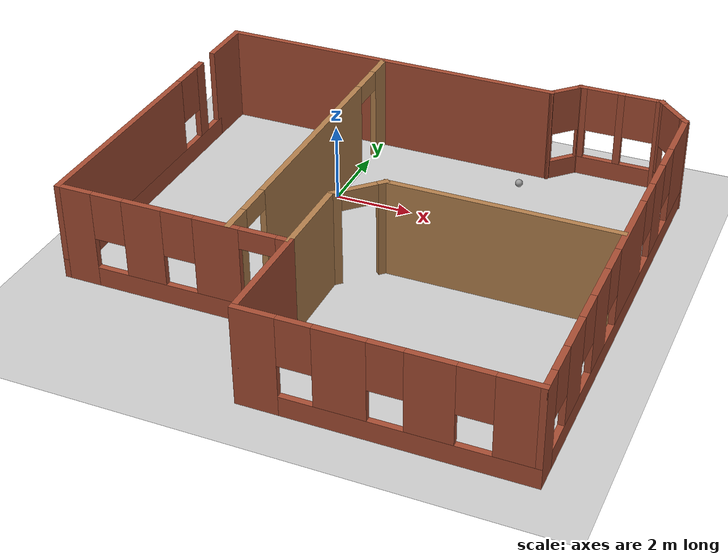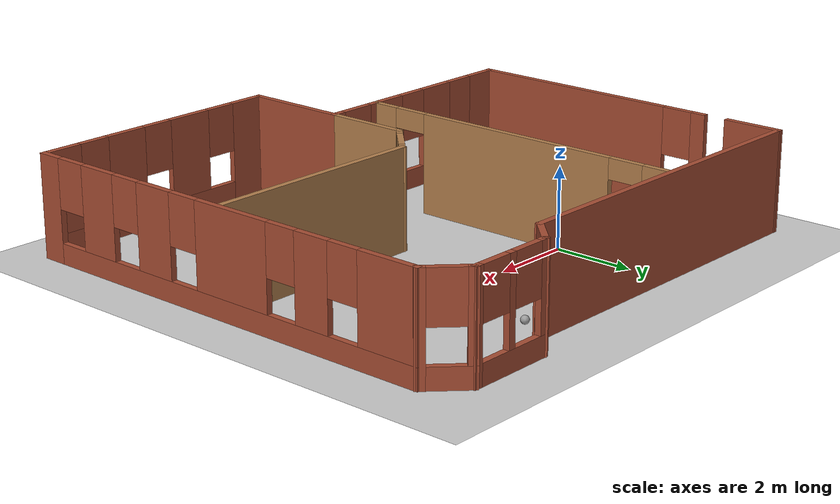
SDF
<sdf version="1.6">
 <world name="default">
  <model name="ground_plane">
   <static>1</static>
   <link name="link">
    <collision name="collision">
     <geometry><plane><normal>0 0 1</normal><size>100 100</size></plane></geometry>
     <surface><friction><ode><mu>100</mu><mu2>50</mu2></ode></friction></surface>
    </collision>
    <visual name="visual">
     <cast_shadows>0</cast_shadows>
     <geometry><plane><normal>0 0 1</normal><size>100 100</size></plane></geometry>
     <material>
      <script><uri>file://media/materials/scripts/gazebo.material</uri><name>Gazebo/Grey</name></script>
     </material>
    </visual>
   </link>
  </model>
  <model name="my_building">
   <pose>1.88159 -2.31707 0 0 -0 0</pose>
   <link name="Wall_1">
    <pose>-6.24044 0.320558 0 0 0 -1.5708</pose>
    <visual name="Wall_1_Visual_0">
     <pose>0 0 0.25 0 -0 0</pose>
     <geometry><box><size>7.5 0.15 0.5</size></box></geometry>
     <material>
      <script><uri>file://media/materials/scripts/gazebo.material</uri><name>Gazebo/Bricks</name></script>
      <ambient>1 1 1 1</ambient>
     </material>
     <meta><layer>0</layer></meta>
    </visual>
    <collision name="Wall_1_Collision_0">
     <geometry><box><size>7.5 0.15 0.5</size></box></geometry>
     <pose>0 0 0.25 0 -0 0</pose>
    </collision>
    <visual name="Wall_1_Visual_1">
     <pose>-2.85238 0 1.5 0 -0 0</pose>
     <geometry><box><size>0.39025 0.15 2</size></box></geometry>
     <material>
      <script><uri>file://media/materials/scripts/gazebo.material</uri><name>Gazebo/Bricks</name></script>
      <ambient>1 1 1 1</ambient>
     </material>
     <meta><layer>0</layer></meta>
    </visual>
    <collision name="Wall_1_Collision_1">
     <geometry><box><size>0.39025 0.15 2</size></box></geometry>
     <pose>-2.85238 0 1.5 0 -0 0</pose>
    </collision>
    <visual name="Wall_1_Visual_2">
     <pose>0.946373 0 1.5 0 -0 0</pose>
     <geometry><box><size>5.60726 0.15 2</size></box></geometry>
     <material>
      <script><uri>file://media/materials/scripts/gazebo.material</uri><name>Gazebo/Bricks</name></script>
      <ambient>1 1 1 1</ambient>
     </material>
     <meta><layer>0</layer></meta>
    </visual>
    <collision name="Wall_1_Collision_2">
     <geometry><box><size>5.60726 0.15 2</size></box></geometry>
     <pose>0.946373 0 1.5 0 -0 0</pose>
    </collision>
    <visual name="Wall_1_Visual_3">
     <pose>-2.25725 0 1.9 0 -0 0</pose>
     <geometry><box><size>0.8 0.15 1.2</size></box></geometry>
     <material>
      <script><uri>file://media/materials/scripts/gazebo.material</uri><name>Gazebo/Bricks</name></script>
      <ambient>1 1 1 1</ambient>
     </material>
     <meta><layer>0</layer></meta>
    </visual>
    <collision name="Wall_1_Collision_3">
     <geometry><box><size>0.8 0.15 1.2</size></box></geometry>
     <pose>-2.25725 0 1.9 0 -0 0</pose>
    </collision>
   </link>
   <link name="Wall_17">
    <collision name="Wall_17_Collision">
     <geometry><box><size>1.5 0.15 2.5</size></box></geometry>
     <pose>0 0 1.25 0 -0 0</pose>
    </collision>
    <visual name="Wall_17_Visual">
     <pose>0 0 1.25 0 -0 0</pose>
     <geometry><box><size>1.5 0.15 2.5</size></box></geometry>
     <material>
      <script><uri>file://media/materials/scripts/gazebo.material</uri><name>Gazebo/Bricks</name></script>
      <ambient>1 1 1 1</ambient>
     </material>
     <meta><layer>0</layer></meta>
    </visual>
    <pose>-6.24044 4.67056 0 0 -0 1.5708</pose>
   </link>
   <link name="Wall_19">
    <collision name="Wall_19_Collision">
     <geometry><box><size>9.12117 0.15 2.5</size></box></geometry>
     <pose>0 0 1.25 0 -0 0</pose>
    </collision>
    <visual name="Wall_19_Visual">
     <pose>0 0 1.25 0 -0 0</pose>
     <geometry><box><size>9.12117 0.15 2.5</size></box></geometry>
     <material>
      <script><uri>file://media/materials/scripts/gazebo.material</uri><name>Gazebo/Bricks</name></script>
      <ambient>1 1 1 1</ambient>
     </material>
     <meta><layer>0</layer></meta>
    </visual>
    <pose>-1.75486 5.33395 0 0 0 -0.002589</pose>
   </link>
   <link name="Wall_2">
    <pose>-3.31544 -3.35444 0 0 -0 0</pose>
    <visual name="Wall_2_Visual_0">
     <pose>-2.5228 0 1.25 0 -0 0</pose>
     <geometry><box><size>0.954403 0.15 2.5</size></box></geometry>
     <material>
      <script><uri>file://media/materials/scripts/gazebo.material</uri><name>Gazebo/Bricks</name></script>
      <ambient>1 1 1 1</ambient>
     </material>
     <meta><layer>0</layer></meta>
    </visual>
    <collision name="Wall_2_Collision_0">
     <geometry><box><size>0.954403 0.15 2.5</size></box></geometry>
     <pose>-2.5228 0 1.25 0 -0 0</pose>
    </collision>
    <visual name="Wall_2_Visual_1">
     <pose>2.80401 0 1.25 0 -0 0</pose>
     <geometry><box><size>0.391972 0.15 2.5</size></box></geometry>
     <material>
      <script><uri>file://media/materials/scripts/gazebo.material</uri><name>Gazebo/Bricks</name></script>
      <ambient>1 1 1 1</ambient>
     </material>
     <meta><layer>0</layer></meta>
    </visual>
    <collision name="Wall_2_Collision_1">
     <geometry><box><size>0.391972 0.15 2.5</size></box></geometry>
     <pose>2.80401 0 1.25 0 -0 0</pose>
    </collision>
    <visual name="Wall_2_Visual_2">
     <pose>-0.168784 0 0.25 0 -0 0</pose>
     <geometry><box><size>3.75362 0.15 0.5</size></box></geometry>
     <material>
      <script><uri>file://media/materials/scripts/gazebo.material</uri><name>Gazebo/Bricks</name></script>
      <ambient>1 1 1 1</ambient>
     </material>
     <meta><layer>0</layer></meta>
    </visual>
    <collision name="Wall_2_Collision_2">
     <geometry><box><size>3.75362 0.15 0.5</size></box></geometry>
     <pose>-0.168784 0 0.25 0 -0 0</pose>
    </collision>
    <visual name="Wall_2_Visual_3">
     <pose>-0.739972 0 1.5 0 -0 0</pose>
     <geometry><box><size>1.01125 0.15 2</size></box></geometry>
     <material>
      <script><uri>file://media/materials/scripts/gazebo.material</uri><name>Gazebo/Bricks</name></script>
      <ambient>1 1 1 1</ambient>
     </material>
     <meta><layer>0</layer></meta>
    </visual>
    <collision name="Wall_2_Collision_3">
     <geometry><box><size>1.01125 0.15 2</size></box></geometry>
     <pose>-0.739972 0 1.5 0 -0 0</pose>
    </collision>
    <visual name="Wall_2_Visual_4">
     <pose>1.13684 0 1.5 0 -0 0</pose>
     <geometry><box><size>1.14237 0.15 2</size></box></geometry>
     <material>
      <script><uri>file://media/materials/scripts/gazebo.material</uri><name>Gazebo/Bricks</name></script>
      <ambient>1 1 1 1</ambient>
     </material>
     <meta><layer>0</layer></meta>
    </visual>
    <collision name="Wall_2_Collision_4">
     <geometry><box><size>1.14237 0.15 2</size></box></geometry>
     <pose>1.13684 0 1.5 0 -0 0</pose>
    </collision>
    <visual name="Wall_2_Visual_5">
     <pose>-1.6456 0 1.9 0 -0 0</pose>
     <geometry><box><size>0.8 0.15 1.2</size></box></geometry>
     <material>
      <script><uri>file://media/materials/scripts/gazebo.material</uri><name>Gazebo/Bricks</name></script>
      <ambient>1 1 1 1</ambient>
     </material>
     <meta><layer>0</layer></meta>
    </visual>
    <collision name="Wall_2_Collision_5">
     <geometry><box><size>0.8 0.15 1.2</size></box></geometry>
     <pose>-1.6456 0 1.9 0 -0 0</pose>
    </collision>
    <visual name="Wall_2_Visual_6">
     <pose>0.165653 0 1.9 0 -0 0</pose>
     <geometry><box><size>0.8 0.15 1.2</size></box></geometry>
     <material>
      <script><uri>file://media/materials/scripts/gazebo.material</uri><name>Gazebo/Bricks</name></script>
      <ambient>1 1 1 1</ambient>
     </material>
     <meta><layer>0</layer></meta>
    </visual>
    <collision name="Wall_2_Collision_6">
     <geometry><box><size>0.8 0.15 1.2</size></box></geometry>
     <pose>0.165653 0 1.9 0 -0 0</pose>
    </collision>
    <visual name="Wall_2_Visual_7">
     <pose>2.15803 0 2.25 0 -0 0</pose>
     <geometry><box><size>0.9 0.15 0.5</size></box></geometry>
     <material>
      <script><uri>file://media/materials/scripts/gazebo.material</uri><name>Gazebo/Bricks</name></script>
      <ambient>1 1 1 1</ambient>
     </material>
     <meta><layer>0</layer></meta>
    </visual>
    <collision name="Wall_2_Collision_7">
     <geometry><box><size>0.9 0.15 0.5</size></box></geometry>
     <pose>2.15803 0 2.25 0 -0 0</pose>
    </collision>
   </link>
   <link name="Wall_23">
    <collision name="Wall_23_Collision">
     <geometry><box><size>2.25 0.15 2.5</size></box></geometry>
     <pose>0 0 1.25 0 -0 0</pose>
    </collision>
    <visual name="Wall_23_Visual">
     <pose>0 0 1.25 0 -0 0</pose>
     <geometry><box><size>2.25 0.15 2.5</size></box></geometry>
     <material>
      <script><uri>file://media/materials/scripts/gazebo.material</uri><name>Gazebo/Wood</name></script>
      <ambient>1 1 1 1</ambient>
     </material>
     <meta><layer>0</layer></meta>
    </visual>
    <pose>-0.390437 -2.30444 0 0 -0 1.5708</pose>
   </link>
   <link name="Wall_24">
    <pose>0.086861 -0.777144 0 0 -0 0.785398</pose>
    <visual name="Wall_24_Visual_0">
     <pose>-0.594763 0 1.25 0 -0 0</pose>
     <geometry><box><size>0.310474 0.15 2.5</size></box></geometry>
     <material>
      <script><uri>file://media/materials/scripts/gazebo.material</uri><name>Gazebo/Wood</name></script>
      <ambient>1 1 1 1</ambient>
     </material>
     <meta><layer>0</layer></meta>
    </visual>
    <collision name="Wall_24_Collision_0">
     <geometry><box><size>0.310474 0.15 2.5</size></box></geometry>
     <pose>-0.594763 0 1.25 0 -0 0</pose>
    </collision>
    <visual name="Wall_24_Visual_1">
     <pose>0.605237 0 1.25 0 -0 0</pose>
     <geometry><box><size>0.289526 0.15 2.5</size></box></geometry>
     <material>
      <script><uri>file://media/materials/scripts/gazebo.material</uri><name>Gazebo/Wood</name></script>
      <ambient>1 1 1 1</ambient>
     </material>
     <meta><layer>0</layer></meta>
    </visual>
    <collision name="Wall_24_Collision_1">
     <geometry><box><size>0.289526 0.15 2.5</size></box></geometry>
     <pose>0.605237 0 1.25 0 -0 0</pose>
    </collision>
    <visual name="Wall_24_Visual_2">
     <pose>0.010474 0 2.25 0 -0 0</pose>
     <geometry><box><size>0.9 0.15 0.5</size></box></geometry>
     <material>
      <script><uri>file://media/materials/scripts/gazebo.material</uri><name>Gazebo/Wood</name></script>
      <ambient>1 1 1 1</ambient>
     </material>
     <meta><layer>0</layer></meta>
    </visual>
    <collision name="Wall_24_Collision_2">
     <geometry><box><size>0.9 0.15 0.5</size></box></geometry>
     <pose>0.010474 0 2.25 0 -0 0</pose>
    </collision>
   </link>
   <link name="Wall_25">
    <collision name="Wall_25_Collision">
     <geometry><box><size>5.75 0.15 2.5</size></box></geometry>
     <pose>0 0 1.25 0 -0 0</pose>
    </collision>
    <visual name="Wall_25_Visual">
     <pose>0 0 1.25 0 -0 0</pose>
     <geometry><box><size>5.75 0.15 2.5</size></box></geometry>
     <material>
      <script><uri>file://media/materials/scripts/gazebo.material</uri><name>Gazebo/Wood</name></script>
      <ambient>1 1 1 1</ambient>
     </material>
     <meta><layer>0</layer></meta>
    </visual>
    <pose>3.36416 -0.299847 0 0 -0 0</pose>
   </link>
   <link name="Wall_28">
    <pose>-1.88191 0.952438 0 0 -0 1.5708</pose>
    <visual name="Wall_28_Visual_0">
     <pose>-3.98031 0 1.25 0 -0 0</pose>
     <geometry><box><size>0.789375 0.15 2.5</size></box></geometry>
     <material>
      <script><uri>file://media/materials/scripts/gazebo.material</uri><name>Gazebo/Wood</name></script>
      <ambient>1 1 1 1</ambient>
     </material>
     <meta><layer>0</layer></meta>
    </visual>
    <collision name="Wall_28_Collision_0">
     <geometry><box><size>0.789375 0.15 2.5</size></box></geometry>
     <pose>-3.98031 0 1.25 0 -0 0</pose>
    </collision>
    <visual name="Wall_28_Visual_1">
     <pose>0.034063 0 1.25 0 -0 0</pose>
     <geometry><box><size>5.43938 0.15 2.5</size></box></geometry>
     <material>
      <script><uri>file://media/materials/scripts/gazebo.material</uri><name>Gazebo/Wood</name></script>
      <ambient>1 1 1 1</ambient>
     </material>
     <meta><layer>0</layer></meta>
    </visual>
    <collision name="Wall_28_Collision_1">
     <geometry><box><size>5.43938 0.15 2.5</size></box></geometry>
     <pose>0.034063 0 1.25 0 -0 0</pose>
    </collision>
    <visual name="Wall_28_Visual_2">
     <pose>4.01438 0 1.25 0 -0 0</pose>
     <geometry><box><size>0.72125 0.15 2.5</size></box></geometry>
     <material>
      <script><uri>file://media/materials/scripts/gazebo.material</uri><name>Gazebo/Wood</name></script>
      <ambient>1 1 1 1</ambient>
     </material>
     <meta><layer>0</layer></meta>
    </visual>
    <collision name="Wall_28_Collision_2">
     <geometry><box><size>0.72125 0.15 2.5</size></box></geometry>
     <pose>4.01438 0 1.25 0 -0 0</pose>
    </collision>
    <visual name="Wall_28_Visual_3">
     <pose>-3.13563 0 2.25 0 -0 0</pose>
     <geometry><box><size>0.9 0.15 0.5</size></box></geometry>
     <material>
      <script><uri>file://media/materials/scripts/gazebo.material</uri><name>Gazebo/Wood</name></script>
      <ambient>1 1 1 1</ambient>
     </material>
     <meta><layer>0</layer></meta>
    </visual>
    <collision name="Wall_28_Collision_3">
     <geometry><box><size>0.9 0.15 0.5</size></box></geometry>
     <pose>-3.13563 0 2.25 0 -0 0</pose>
    </collision>
    <visual name="Wall_28_Visual_4">
     <pose>3.20375 0 2.25 0 -0 0</pose>
     <geometry><box><size>0.9 0.15 0.5</size></box></geometry>
     <material>
      <script><uri>file://media/materials/scripts/gazebo.material</uri><name>Gazebo/Wood</name></script>
      <ambient>1 1 1 1</ambient>
     </material>
     <meta><layer>0</layer></meta>
    </visual>
    <collision name="Wall_28_Collision_4">
     <geometry><box><size>0.9 0.15 0.5</size></box></geometry>
     <pose>3.20375 0 2.25 0 -0 0</pose>
    </collision>
   </link>
   <link name="Wall_3">
    <collision name="Wall_3_Collision">
     <geometry><box><size>2.75 0.15 2.5</size></box></geometry>
     <pose>0 0 1.25 0 -0 0</pose>
    </collision>
    <visual name="Wall_3_Visual">
     <pose>0 0 1.25 0 -0 0</pose>
     <geometry><box><size>2.75 0.15 2.5</size></box></geometry>
     <material>
      <script><uri>file://media/materials/scripts/gazebo.material</uri><name>Gazebo/Bricks</name></script>
      <ambient>1 1 1 1</ambient>
     </material>
     <meta><layer>0</layer></meta>
    </visual>
    <pose>-0.390437 -4.65444 0 0 0 -1.5708</pose>
   </link>
   <link name="Wall_4">
    <pose>2.90956 -5.95444 0 0 -0 0</pose>
    <visual name="Wall_4_Visual_0">
     <pose>-2.86011 0 1.25 0 -0 0</pose>
     <geometry><box><size>1.02978 0.15 2.5</size></box></geometry>
     <material>
      <script><uri>file://media/materials/scripts/gazebo.material</uri><name>Gazebo/Bricks</name></script>
      <ambient>1 1 1 1</ambient>
     </material>
     <meta><layer>0</layer></meta>
    </visual>
    <collision name="Wall_4_Collision_0">
     <geometry><box><size>1.02978 0.15 2.5</size></box></geometry>
     <pose>-2.86011 0 1.25 0 -0 0</pose>
    </collision>
    <visual name="Wall_4_Visual_1">
     <pose>0.514889 0 0.25 0 -0 0</pose>
     <geometry><box><size>5.72022 0.15 0.5</size></box></geometry>
     <material>
      <script><uri>file://media/materials/scripts/gazebo.material</uri><name>Gazebo/Bricks</name></script>
      <ambient>1 1 1 1</ambient>
     </material>
     <meta><layer>0</layer></meta>
    </visual>
    <collision name="Wall_4_Collision_1">
     <geometry><box><size>5.72022 0.15 0.5</size></box></geometry>
     <pose>0.514889 0 0.25 0 -0 0</pose>
    </collision>
    <visual name="Wall_4_Visual_2">
     <pose>-0.949034 0 1.5 0 -0 0</pose>
     <geometry><box><size>1.19237 0.15 2</size></box></geometry>
     <material>
      <script><uri>file://media/materials/scripts/gazebo.material</uri><name>Gazebo/Bricks</name></script>
      <ambient>1 1 1 1</ambient>
     </material>
     <meta><layer>0</layer></meta>
    </visual>
    <collision name="Wall_4_Collision_2">
     <geometry><box><size>1.19237 0.15 2</size></box></geometry>
     <pose>-0.949034 0 1.5 0 -0 0</pose>
    </collision>
    <visual name="Wall_4_Visual_3">
     <pose>0.991591 0 1.5 0 -0 0</pose>
     <geometry><box><size>1.08888 0.15 2</size></box></geometry>
     <material>
      <script><uri>file://media/materials/scripts/gazebo.material</uri><name>Gazebo/Bricks</name></script>
      <ambient>1 1 1 1</ambient>
     </material>
     <meta><layer>0</layer></meta>
    </visual>
    <collision name="Wall_4_Collision_3">
     <geometry><box><size>1.08888 0.15 2</size></box></geometry>
     <pose>0.991591 0 1.5 0 -0 0</pose>
    </collision>
    <visual name="Wall_4_Visual_4">
     <pose>2.85551 0 1.5 0 -0 0</pose>
     <geometry><box><size>1.03897 0.15 2</size></box></geometry>
     <material>
      <script><uri>file://media/materials/scripts/gazebo.material</uri><name>Gazebo/Bricks</name></script>
      <ambient>1 1 1 1</ambient>
     </material>
     <meta><layer>0</layer></meta>
    </visual>
    <collision name="Wall_4_Collision_4">
     <geometry><box><size>1.03897 0.15 2</size></box></geometry>
     <pose>2.85551 0 1.5 0 -0 0</pose>
    </collision>
    <visual name="Wall_4_Visual_5">
     <pose>-1.94522 0 1.9 0 -0 0</pose>
     <geometry><box><size>0.8 0.15 1.2</size></box></geometry>
     <material>
      <script><uri>file://media/materials/scripts/gazebo.material</uri><name>Gazebo/Bricks</name></script>
      <ambient>1 1 1 1</ambient>
     </material>
     <meta><layer>0</layer></meta>
    </visual>
    <collision name="Wall_4_Collision_5">
     <geometry><box><size>0.8 0.15 1.2</size></box></geometry>
     <pose>-1.94522 0 1.9 0 -0 0</pose>
    </collision>
    <visual name="Wall_4_Visual_6">
     <pose>0.047153 0 1.9 0 -0 0</pose>
     <geometry><box><size>0.8 0.15 1.2</size></box></geometry>
     <material>
      <script><uri>file://media/materials/scripts/gazebo.material</uri><name>Gazebo/Bricks</name></script>
      <ambient>1 1 1 1</ambient>
     </material>
     <meta><layer>0</layer></meta>
    </visual>
    <collision name="Wall_4_Collision_6">
     <geometry><box><size>0.8 0.15 1.2</size></box></geometry>
     <pose>0.047153 0 1.9 0 -0 0</pose>
    </collision>
    <visual name="Wall_4_Visual_7">
     <pose>1.93603 0 1.9 0 -0 0</pose>
     <geometry><box><size>0.8 0.15 1.2</size></box></geometry>
     <material>
      <script><uri>file://media/materials/scripts/gazebo.material</uri><name>Gazebo/Bricks</name></script>
      <ambient>1 1 1 1</ambient>
     </material>
     <meta><layer>0</layer></meta>
    </visual>
    <collision name="Wall_4_Collision_7">
     <geometry><box><size>0.8 0.15 1.2</size></box></geometry>
     <pose>1.93603 0 1.9 0 -0 0</pose>
    </collision>
   </link>
   <link name="Wall_5">
    <pose>6.20956 -0.404442 0 0 -0 1.5708</pose>
    <visual name="Wall_5_Visual_0">
     <pose>-5.31206 0 1.25 0 -0 0</pose>
     <geometry><box><size>0.62588 0.15 2.5</size></box></geometry>
     <material>
      <script><uri>file://media/materials/scripts/gazebo.material</uri><name>Gazebo/Bricks</name></script>
      <ambient>1 1 1 1</ambient>
     </material>
     <meta><layer>0</layer></meta>
    </visual>
    <collision name="Wall_5_Collision_0">
     <geometry><box><size>0.62588 0.15 2.5</size></box></geometry>
     <pose>-5.31206 0 1.25 0 -0 0</pose>
    </collision>
    <visual name="Wall_5_Visual_1">
     <pose>0.31294 0 0.25 0 -0 0</pose>
     <geometry><box><size>10.6241 0.15 0.5</size></box></geometry>
     <material>
      <script><uri>file://media/materials/scripts/gazebo.material</uri><name>Gazebo/Bricks</name></script>
      <ambient>1 1 1 1</ambient>
     </material>
     <meta><layer>0</layer></meta>
    </visual>
    <collision name="Wall_5_Collision_1">
     <geometry><box><size>10.6241 0.15 0.5</size></box></geometry>
     <pose>0.31294 0 0.25 0 -0 0</pose>
    </collision>
    <visual name="Wall_5_Visual_2">
     <pose>-3.68056 0 1.5 0 -0 0</pose>
     <geometry><box><size>1.03713 0.15 2</size></box></geometry>
     <material>
      <script><uri>file://media/materials/scripts/gazebo.material</uri><name>Gazebo/Bricks</name></script>
      <ambient>1 1 1 1</ambient>
     </material>
     <meta><layer>0</layer></meta>
    </visual>
    <collision name="Wall_5_Collision_2">
     <geometry><box><size>1.03713 0.15 2</size></box></geometry>
     <pose>-3.68056 0 1.5 0 -0 0</pose>
    </collision>
    <visual name="Wall_5_Visual_3">
     <pose>-1.84343 0 1.5 0 -0 0</pose>
     <geometry><box><size>1.03713 0.15 2</size></box></geometry>
     <material>
      <script><uri>file://media/materials/scripts/gazebo.material</uri><name>Gazebo/Bricks</name></script>
      <ambient>1 1 1 1</ambient>
     </material>
     <meta><layer>0</layer></meta>
    </visual>
    <collision name="Wall_5_Collision_3">
     <geometry><box><size>1.03713 0.15 2</size></box></geometry>
     <pose>-1.84343 0 1.5 0 -0 0</pose>
    </collision>
    <visual name="Wall_5_Visual_4">
     <pose>0.52413 0 1.5 0 -0 0</pose>
     <geometry><box><size>2.098 0.15 2</size></box></geometry>
     <material>
      <script><uri>file://media/materials/scripts/gazebo.material</uri><name>Gazebo/Bricks</name></script>
      <ambient>1 1 1 1</ambient>
     </material>
     <meta><layer>0</layer></meta>
    </visual>
    <collision name="Wall_5_Collision_4">
     <geometry><box><size>2.098 0.15 2</size></box></geometry>
     <pose>0.52413 0 1.5 0 -0 0</pose>
    </collision>
    <visual name="Wall_5_Visual_5">
     <pose>2.82701 0 1.5 0 -0 0</pose>
     <geometry><box><size>0.90775 0.15 2</size></box></geometry>
     <material>
      <script><uri>file://media/materials/scripts/gazebo.material</uri><name>Gazebo/Bricks</name></script>
      <ambient>1 1 1 1</ambient>
     </material>
     <meta><layer>0</layer></meta>
    </visual>
    <collision name="Wall_5_Collision_5">
     <geometry><box><size>0.90775 0.15 2</size></box></geometry>
     <pose>2.82701 0 1.5 0 -0 0</pose>
    </collision>
    <visual name="Wall_5_Visual_6">
     <pose>4.85294 0 1.5 0 -0 0</pose>
     <geometry><box><size>1.54412 0.15 2</size></box></geometry>
     <material>
      <script><uri>file://media/materials/scripts/gazebo.material</uri><name>Gazebo/Bricks</name></script>
      <ambient>1 1 1 1</ambient>
     </material>
     <meta><layer>0</layer></meta>
    </visual>
    <collision name="Wall_5_Collision_6">
     <geometry><box><size>1.54412 0.15 2</size></box></geometry>
     <pose>4.85294 0 1.5 0 -0 0</pose>
    </collision>
    <visual name="Wall_5_Visual_7">
     <pose>-4.59912 0 1.9 0 -0 0</pose>
     <geometry><box><size>0.8 0.15 1.2</size></box></geometry>
     <material>
      <script><uri>file://media/materials/scripts/gazebo.material</uri><name>Gazebo/Bricks</name></script>
      <ambient>1 1 1 1</ambient>
     </material>
     <meta><layer>0</layer></meta>
    </visual>
    <collision name="Wall_5_Collision_7">
     <geometry><box><size>0.8 0.15 1.2</size></box></geometry>
     <pose>-4.59912 0 1.9 0 -0 0</pose>
    </collision>
    <visual name="Wall_5_Visual_8">
     <pose>-2.762 0 1.9 0 -0 0</pose>
     <geometry><box><size>0.8 0.15 1.2</size></box></geometry>
     <material>
      <script><uri>file://media/materials/scripts/gazebo.material</uri><name>Gazebo/Bricks</name></script>
      <ambient>1 1 1 1</ambient>
     </material>
     <meta><layer>0</layer></meta>
    </visual>
    <collision name="Wall_5_Collision_8">
     <geometry><box><size>0.8 0.15 1.2</size></box></geometry>
     <pose>-2.762 0 1.9 0 -0 0</pose>
    </collision>
    <visual name="Wall_5_Visual_9">
     <pose>-0.92487 0 1.9 0 -0 0</pose>
     <geometry><box><size>0.8 0.15 1.2</size></box></geometry>
     <material>
      <script><uri>file://media/materials/scripts/gazebo.material</uri><name>Gazebo/Bricks</name></script>
      <ambient>1 1 1 1</ambient>
     </material>
     <meta><layer>0</layer></meta>
    </visual>
    <collision name="Wall_5_Collision_9">
     <geometry><box><size>0.8 0.15 1.2</size></box></geometry>
     <pose>-0.92487 0 1.9 0 -0 0</pose>
    </collision>
    <visual name="Wall_5_Visual_10">
     <pose>1.97313 0 1.9 0 -0 0</pose>
     <geometry><box><size>0.8 0.15 1.2</size></box></geometry>
     <material>
      <script><uri>file://media/materials/scripts/gazebo.material</uri><name>Gazebo/Bricks</name></script>
      <ambient>1 1 1 1</ambient>
     </material>
     <meta><layer>0</layer></meta>
    </visual>
    <collision name="Wall_5_Collision_10">
     <geometry><box><size>0.8 0.15 1.2</size></box></geometry>
     <pose>1.97313 0 1.9 0 -0 0</pose>
    </collision>
    <visual name="Wall_5_Visual_11">
     <pose>3.68088 0 1.9 0 -0 0</pose>
     <geometry><box><size>0.8 0.15 1.2</size></box></geometry>
     <material>
      <script><uri>file://media/materials/scripts/gazebo.material</uri><name>Gazebo/Bricks</name></script>
      <ambient>1 1 1 1</ambient>
     </material>
     <meta><layer>0</layer></meta>
    </visual>
    <collision name="Wall_5_Collision_11">
     <geometry><box><size>0.8 0.15 1.2</size></box></geometry>
     <pose>3.68088 0 1.9 0 -0 0</pose>
    </collision>
   </link>
   <link name="Wall_6">
    <pose>5.82066 5.53447 0 0 -0 2.35619</pose>
    <visual name="Wall_6_Visual_0">
     <pose>-0.508687 0 1.25 0 -0 0</pose>
     <geometry><box><size>0.232626 0.15 2.5</size></box></geometry>
     <material>
      <script><uri>file://media/materials/scripts/gazebo.material</uri><name>Gazebo/Bricks</name></script>
      <ambient>1 1 1 1</ambient>
     </material>
     <meta><layer>0</layer></meta>
    </visual>
    <collision name="Wall_6_Collision_0">
     <geometry><box><size>0.232626 0.15 2.5</size></box></geometry>
     <pose>-0.508687 0 1.25 0 -0 0</pose>
    </collision>
    <visual name="Wall_6_Visual_1">
     <pose>0.116313 0 0.25 0 -0 0</pose>
     <geometry><box><size>1.01737 0.15 0.5</size></box></geometry>
     <material>
      <script><uri>file://media/materials/scripts/gazebo.material</uri><name>Gazebo/Bricks</name></script>
      <ambient>1 1 1 1</ambient>
     </material>
     <meta><layer>0</layer></meta>
    </visual>
    <collision name="Wall_6_Collision_1">
     <geometry><box><size>1.01737 0.15 0.5</size></box></geometry>
     <pose>0.116313 0 0.25 0 -0 0</pose>
    </collision>
    <visual name="Wall_6_Visual_2">
     <pose>0.516313 0 1.5 0 -0 0</pose>
     <geometry><box><size>0.217374 0.15 2</size></box></geometry>
     <material>
      <script><uri>file://media/materials/scripts/gazebo.material</uri><name>Gazebo/Bricks</name></script>
      <ambient>1 1 1 1</ambient>
     </material>
     <meta><layer>0</layer></meta>
    </visual>
    <collision name="Wall_6_Collision_2">
     <geometry><box><size>0.217374 0.15 2</size></box></geometry>
     <pose>0.516313 0 1.5 0 -0 0</pose>
    </collision>
    <visual name="Wall_6_Visual_3">
     <pose>0.007626 0 1.9 0 -0 0</pose>
     <geometry><box><size>0.8 0.15 1.2</size></box></geometry>
     <material>
      <script><uri>file://media/materials/scripts/gazebo.material</uri><name>Gazebo/Bricks</name></script>
      <ambient>1 1 1 1</ambient>
     </material>
     <meta><layer>0</layer></meta>
    </visual>
    <collision name="Wall_6_Collision_3">
     <geometry><box><size>0.8 0.15 1.2</size></box></geometry>
     <pose>0.007626 0 1.9 0 -0 0</pose>
    </collision>
   </link>
   <link name="Wall_7">
    <pose>4.38175 5.92338 0 0 -0 3.14159</pose>
    <visual name="Wall_7_Visual_0">
     <pose>-1.0203 0 1.25 0 -0 0</pose>
     <geometry><box><size>0.209405 0.15 2.5</size></box></geometry>
     <material>
      <script><uri>file://media/materials/scripts/gazebo.material</uri><name>Gazebo/Bricks</name></script>
      <ambient>1 1 1 1</ambient>
     </material>
     <meta><layer>0</layer></meta>
    </visual>
    <collision name="Wall_7_Collision_0">
     <geometry><box><size>0.209405 0.15 2.5</size></box></geometry>
     <pose>-1.0203 0 1.25 0 -0 0</pose>
    </collision>
    <visual name="Wall_7_Visual_1">
     <pose>0.104702 0 0.25 0 -0 0</pose>
     <geometry><box><size>2.0406 0.15 0.5</size></box></geometry>
     <material>
      <script><uri>file://media/materials/scripts/gazebo.material</uri><name>Gazebo/Bricks</name></script>
      <ambient>1 1 1 1</ambient>
     </material>
     <meta><layer>0</layer></meta>
    </visual>
    <collision name="Wall_7_Collision_1">
     <geometry><box><size>2.0406 0.15 0.5</size></box></geometry>
     <pose>0.104702 0 0.25 0 -0 0</pose>
    </collision>
    <visual name="Wall_7_Visual_2">
     <pose>-0.02397 0 1.5 0 -0 0</pose>
     <geometry><box><size>0.18325 0.15 2</size></box></geometry>
     <material>
      <script><uri>file://media/materials/scripts/gazebo.material</uri><name>Gazebo/Bricks</name></script>
      <ambient>1 1 1 1</ambient>
     </material>
     <meta><layer>0</layer></meta>
    </visual>
    <collision name="Wall_7_Collision_2">
     <geometry><box><size>0.18325 0.15 2</size></box></geometry>
     <pose>-0.02397 0 1.5 0 -0 0</pose>
    </collision>
    <visual name="Wall_7_Visual_3">
     <pose>0.996327 0 1.5 0 -0 0</pose>
     <geometry><box><size>0.257345 0.15 2</size></box></geometry>
     <material>
      <script><uri>file://media/materials/scripts/gazebo.material</uri><name>Gazebo/Bricks</name></script>
      <ambient>1 1 1 1</ambient>
     </material>
     <meta><layer>0</layer></meta>
    </visual>
    <collision name="Wall_7_Collision_3">
     <geometry><box><size>0.257345 0.15 2</size></box></geometry>
     <pose>0.996327 0 1.5 0 -0 0</pose>
    </collision>
    <visual name="Wall_7_Visual_4">
     <pose>-0.515595 0 1.9 0 -0 0</pose>
     <geometry><box><size>0.8 0.15 1.2</size></box></geometry>
     <material>
      <script><uri>file://media/materials/scripts/gazebo.material</uri><name>Gazebo/Bricks</name></script>
      <ambient>1 1 1 1</ambient>
     </material>
     <meta><layer>0</layer></meta>
    </visual>
    <collision name="Wall_7_Collision_4">
     <geometry><box><size>0.8 0.15 1.2</size></box></geometry>
     <pose>-0.515595 0 1.9 0 -0 0</pose>
    </collision>
    <visual name="Wall_7_Visual_5">
     <pose>0.467655 0 1.9 0 -0 0</pose>
     <geometry><box><size>0.8 0.15 1.2</size></box></geometry>
     <material>
      <script><uri>file://media/materials/scripts/gazebo.material</uri><name>Gazebo/Bricks</name></script>
      <ambient>1 1 1 1</ambient>
     </material>
     <meta><layer>0</layer></meta>
    </visual>
    <collision name="Wall_7_Collision_5">
     <geometry><box><size>0.8 0.15 1.2</size></box></geometry>
     <pose>0.467655 0 1.9 0 -0 0</pose>
    </collision>
   </link>
   <link name="Wall_8">
    <pose>3.03123 5.62286 0 0 0 -2.35619</pose>
    <visual name="Wall_8_Visual_0">
     <pose>-0.435707 0 1.25 0 -0 0</pose>
     <geometry><box><size>0.128586 0.15 2.5</size></box></geometry>
     <material>
      <script><uri>file://media/materials/scripts/gazebo.material</uri><name>Gazebo/Bricks</name></script>
      <ambient>1 1 1 1</ambient>
     </material>
     <meta><layer>0</layer></meta>
    </visual>
    <collision name="Wall_8_Collision_0">
     <geometry><box><size>0.128586 0.15 2.5</size></box></geometry>
     <pose>-0.435707 0 1.25 0 -0 0</pose>
    </collision>
    <visual name="Wall_8_Visual_1">
     <pose>0.064293 0 0.25 0 -0 0</pose>
     <geometry><box><size>0.871414 0.15 0.5</size></box></geometry>
     <material>
      <script><uri>file://media/materials/scripts/gazebo.material</uri><name>Gazebo/Bricks</name></script>
      <ambient>1 1 1 1</ambient>
     </material>
     <meta><layer>0</layer></meta>
    </visual>
    <collision name="Wall_8_Collision_1">
     <geometry><box><size>0.871414 0.15 0.5</size></box></geometry>
     <pose>0.064293 0 0.25 0 -0 0</pose>
    </collision>
    <visual name="Wall_8_Visual_2">
     <pose>0.464293 0 1.5 0 -0 0</pose>
     <geometry><box><size>0.071414 0.15 2</size></box></geometry>
     <material>
      <script><uri>file://media/materials/scripts/gazebo.material</uri><name>Gazebo/Bricks</name></script>
      <ambient>1 1 1 1</ambient>
     </material>
     <meta><layer>0</layer></meta>
    </visual>
    <collision name="Wall_8_Collision_2">
     <geometry><box><size>0.071414 0.15 2</size></box></geometry>
     <pose>0.464293 0 1.5 0 -0 0</pose>
    </collision>
    <visual name="Wall_8_Visual_3">
     <pose>0.028586 0 1.9 0 -0 0</pose>
     <geometry><box><size>0.8 0.15 1.2</size></box></geometry>
     <material>
      <script><uri>file://media/materials/scripts/gazebo.material</uri><name>Gazebo/Bricks</name></script>
      <ambient>1 1 1 1</ambient>
     </material>
     <meta><layer>0</layer></meta>
    </visual>
    <collision name="Wall_8_Collision_3">
     <geometry><box><size>0.8 0.15 1.2</size></box></geometry>
     <pose>0.028586 0 1.9 0 -0 0</pose>
    </collision>
   </link>
   <static>1</static>
  </model>
  <model name="my_ball">
   <link name="link_0">
    <inertial>
     <mass>1</mass>
     <inertia><ixx>0.1</ixx><ixy>0</ixy><ixz>0</ixz><iyy>0.1</iyy><iyz>0</iyz><izz>0.1</izz></inertia>
    </inertial>
    <visual name="visual">
     <geometry><sphere><radius>0.1</radius></sphere></geometry>
     <material>
      <lighting>1</lighting>
      <script><uri>file://media/materials/scripts/gazebo.material</uri><name>Gazebo/Grey</name></script>
      <shader type="pixel"><normal_map>__default__</normal_map></shader>
      <ambient>1 1 1 1</ambient>
      <diffuse>1 1 1 1</diffuse>
      <specular>1 1 1 1</specular>
      <emissive>1 1 1 1</emissive>
     </material>
    </visual>
    <collision name="collision">
     <geometry><sphere><radius>0.1</radius></sphere></geometry>
     <surface>
      <friction>
       <ode><mu>1</mu><mu2>1</mu2><fdir1>0 0 0</fdir1><slip1>0</slip1><slip2>0</slip2></ode>
       <torsional>
        <coefficient>1</coefficient>
        <patch_radius>0</patch_radius>
        <surface_radius>0</surface_radius>
        <use_patch_radius>1</use_patch_radius>
        <ode><slip>0</slip></ode>
       </torsional>
      </friction>
      <bounce><restitution_coefficient>0</restitution_coefficient><threshold>1e+06</threshold></bounce>
      <contact>
       <collide_without_contact>0</collide_without_contact>
       <collide_without_contact_bitmask>1</collide_without_contact_bitmask>
       <collide_bitmask>1</collide_bitmask>
       <ode>
        <soft_cfm>0</soft_cfm>
        <soft_erp>0.2</soft_erp>
        <kp>1e+13</kp>
        <kd>1</kd>
        <max_vel>0.01</max_vel>
        <min_depth>0</min_depth>
       </ode>
       <bullet>
        <split_impulse>1</split_impulse>
        <split_impulse_penetration_threshold>-0.01</split_impulse_penetration_threshold>
        <soft_cfm>0</soft_cfm>
        <soft_erp>0.2</soft_erp>
        <kp>1e+13</kp>
        <kd>1</kd>
       </bullet>
      </contact>
     </surface>
    </collision>
   </link>
   <static>0</static>
   <pose>4.11123 2.28575 0.1 0 -0 0</pose>
  </model>
 </world>
</sdf>
